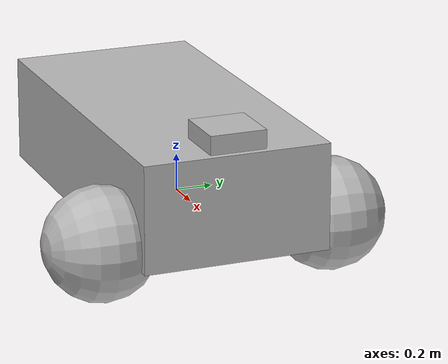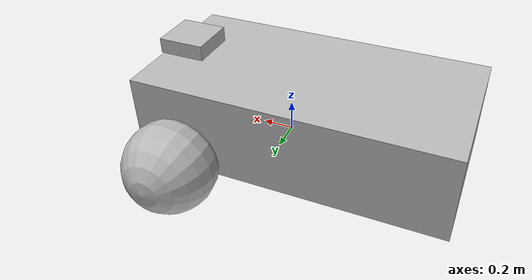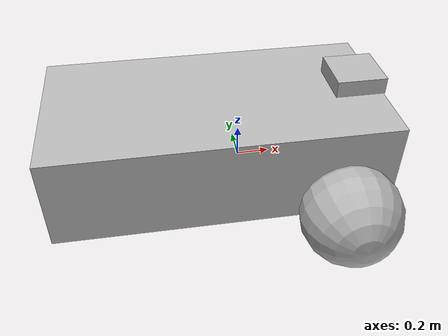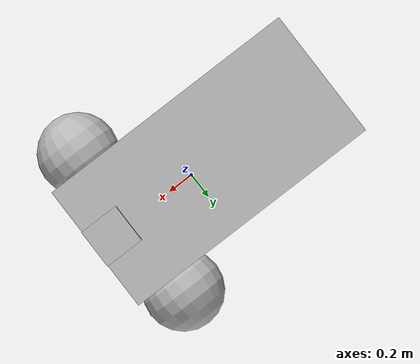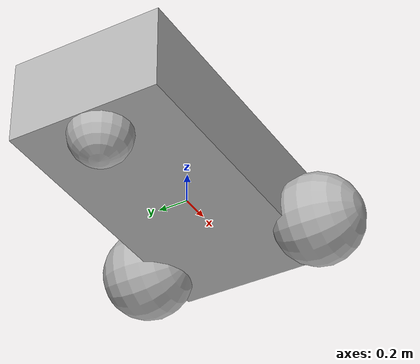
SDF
<?xml version='1.0'?>
<sdf version='1.7'>
  <model name='my_robot'>
    <link name='chassis'>
      <pose>-0.151427 0 0.175 0 -0 0</pose>
      <inertial>
        <mass>1.14395</mass>
        <inertia>
          <ixx>0.126164</ixx>
          <ixy>0</ixy>
          <ixz>0</ixz>
          <iyy>0.416519</iyy>
          <iyz>0</iyz>
          <izz>0.481014</izz>
        </inertia>
        <pose>0 0 0 0 -0 0</pose>
      </inertial>
      <self_collide>0</self_collide>
      <enable_wind>0</enable_wind>
      <kinematic>0</kinematic>
      <visual name='visual'>
        <geometry>
          <box>
            <size>2.01142 1 0.568726</size>
          </box>
        </geometry>
        <material>
          <shader type='pixel'/>
          <emissive>0 0 0 1</emissive>
        </material>
        <pose>0 0 0 0 -0 0</pose>
        <transparency>0</transparency>
        <cast_shadows>1</cast_shadows>
      </visual>
      <collision name='collision'>
        <laser_retro>0</laser_retro>
        <max_contacts>10</max_contacts>
        <pose>0 0 0 0 -0 0</pose>
        <geometry>
          <box>
            <size>2.01142 1 0.568726</size>
          </box>
        </geometry>
        <surface>
          <friction>
            <ode>
              <mu>1</mu>
              <mu2>1</mu2>
              <fdir1>0 0 0</fdir1>
              <slip1>0</slip1>
              <slip2>0</slip2>
            </ode>
            <torsional>
              <coefficient>1</coefficient>
              <patch_radius>0</patch_radius>
              <surface_radius>0</surface_radius>
              <use_patch_radius>1</use_patch_radius>
              <ode>
                <slip>0</slip>
              </ode>
            </torsional>
          </friction>
          <bounce>
            <restitution_coefficient>0</restitution_coefficient>
            <threshold>1e+06</threshold>
          </bounce>
          <contact>
            <collide_without_contact>0</collide_without_contact>
            <collide_without_contact_bitmask>1</collide_without_contact_bitmask>
            <collide_bitmask>1</collide_bitmask>
            <ode>
              <soft_cfm>0</soft_cfm>
              <soft_erp>0.2</soft_erp>
              <kp>1e+13</kp>
              <kd>1</kd>
              <max_vel>0.01</max_vel>
              <min_depth>0</min_depth>
            </ode>
            <bullet>
              <split_impulse>1</split_impulse>
              <split_impulse_penetration_threshold>-0.01</split_impulse_penetration_threshold>
              <soft_cfm>0</soft_cfm>
              <soft_erp>0.2</soft_erp>
              <kp>1e+13</kp>
              <kd>1</kd>
            </bullet>
          </contact>
        </surface>
      </collision>
    </link>
    <link name='caster'>
      <pose>-0.957138 -0 -0.125 0 -0 0</pose>
      <inertial>
        <mass>1</mass>
        <inertia>
          <ixx>0.1</ixx>
          <ixy>0</ixy>
          <ixz>0</ixz>
          <iyy>0.1</iyy>
          <iyz>0</iyz>
          <izz>0.1</izz>
        </inertia>
        <pose>0 0 0 0 -0 0</pose>
      </inertial>
      <self_collide>0</self_collide>
      <enable_wind>0</enable_wind>
      <kinematic>0</kinematic>
      <visual name='visual'>
        <geometry>
          <sphere>
            <radius>0.2</radius>
          </sphere>
        </geometry>
        <material>
          <shader type='pixel'/>
          <emissive>0 0 0 1</emissive>
        </material>
        <pose>0 0 0 0 -0 0</pose>
        <transparency>0</transparency>
        <cast_shadows>1</cast_shadows>
      </visual>
      <collision name='collision'>
        <laser_retro>0</laser_retro>
        <max_contacts>10</max_contacts>
        <pose>0 0 0 0 -0 0</pose>
        <geometry>
          <sphere>
            <radius>0.2</radius>
          </sphere>
        </geometry>
        <surface>
          <friction>
            <ode>
              <mu>1</mu>
              <mu2>1</mu2>
              <fdir1>0 0 0</fdir1>
              <slip1>0</slip1>
              <slip2>0</slip2>
            </ode>
            <torsional>
              <coefficient>1</coefficient>
              <patch_radius>0</patch_radius>
              <surface_radius>0</surface_radius>
              <use_patch_radius>1</use_patch_radius>
              <ode>
                <slip>0</slip>
              </ode>
            </torsional>
          </friction>
          <bounce>
            <restitution_coefficient>0</restitution_coefficient>
            <threshold>1e+06</threshold>
          </bounce>
          <contact>
            <collide_without_contact>0</collide_without_contact>
            <collide_without_contact_bitmask>1</collide_without_contact_bitmask>
            <collide_bitmask>1</collide_bitmask>
            <ode>
              <soft_cfm>0</soft_cfm>
              <soft_erp>0.2</soft_erp>
              <kp>1e+13</kp>
              <kd>1</kd>
              <max_vel>0.01</max_vel>
              <min_depth>0</min_depth>
            </ode>
            <bullet>
              <split_impulse>1</split_impulse>
              <split_impulse_penetration_threshold>-0.01</split_impulse_penetration_threshold>
              <soft_cfm>0</soft_cfm>
              <soft_erp>0.2</soft_erp>
              <kp>1e+13</kp>
              <kd>1</kd>
            </bullet>
          </contact>
        </surface>
      </collision>
    </link>
    <link name='left_wheel'>
      <pose>0.554283 0.625029 -0.025 -1.5707 -0 -0</pose>
      <inertial>
        <mass>2</mass>
        <inertia>
          <ixx>0.145833</ixx>
          <ixy>0</ixy>
          <ixz>0</ixz>
          <iyy>0.145833</iyy>
          <iyz>0</iyz>
          <izz>0.125</izz>
        </inertia>
        <pose>0 0 0 0 -0 0</pose>
      </inertial>
      <self_collide>0</self_collide>
      <enable_wind>0</enable_wind>
      <kinematic>0</kinematic>
      <visual name='visual'>
        <geometry>
          <sphere>
            <radius>0.3</radius>
          </sphere>
        </geometry>
        <material>
          <shader type='pixel'/>
          <emissive>0 0 0 1</emissive>
        </material>
        <pose>0 0 0 0 -0 0</pose>
        <transparency>0</transparency>
        <cast_shadows>1</cast_shadows>
      </visual>
      <collision name='collision'>
        <laser_retro>0</laser_retro>
        <max_contacts>10</max_contacts>
        <pose>0 0 0 0 -0 0</pose>
        <geometry>
          <sphere>
            <radius>0.3</radius>
          </sphere>
        </geometry>
        <surface>
          <friction>
            <ode>
              <mu>1</mu>
              <mu2>1</mu2>
              <fdir1>0 0 0</fdir1>
              <slip1>0</slip1>
              <slip2>0</slip2>
            </ode>
            <torsional>
              <coefficient>1</coefficient>
              <patch_radius>0</patch_radius>
              <surface_radius>0</surface_radius>
              <use_patch_radius>1</use_patch_radius>
              <ode>
                <slip>0</slip>
              </ode>
            </torsional>
          </friction>
          <bounce>
            <restitution_coefficient>0</restitution_coefficient>
            <threshold>1e+06</threshold>
          </bounce>
          <contact>
            <collide_without_contact>0</collide_without_contact>
            <collide_without_contact_bitmask>1</collide_without_contact_bitmask>
            <collide_bitmask>1</collide_bitmask>
            <ode>
              <soft_cfm>0</soft_cfm>
              <soft_erp>0.2</soft_erp>
              <kp>1e+13</kp>
              <kd>1</kd>
              <max_vel>0.01</max_vel>
              <min_depth>0.01</min_depth>
            </ode>
            <bullet>
              <split_impulse>1</split_impulse>
              <split_impulse_penetration_threshold>-0.01</split_impulse_penetration_threshold>
              <soft_cfm>0</soft_cfm>
              <soft_erp>0.2</soft_erp>
              <kp>1e+13</kp>
              <kd>1</kd>
            </bullet>
          </contact>
        </surface>
      </collision>
    </link>
    <link name='camera_link'>
      <inertial>
        <mass>0.009</mass>
        <inertia>
          <ixx>7.5e-05</ixx>
          <ixy>0</ixy>
          <ixz>0</ixz>
          <iyy>7.5e-05</iyy>
          <iyz>0</iyz>
          <izz>0.000135</izz>
        </inertia>
        <pose>0 0 0 0 -0 0</pose>
      </inertial>
      <pose>0.703463 -5e-06 0.522662 1e-06 -5e-06 0</pose>
      <gravity>1</gravity>
      <self_collide>0</self_collide>
      <kinematic>0</kinematic>
      <enable_wind>0</enable_wind>
      <visual name='visual'>
        <pose>0 0 0 0 -0 0</pose>
        <geometry>
          <box>
            <size>0.3 0.3 0.1</size>
          </box>
        </geometry>
        <material>
          <shader type='pixel'/>
          <emissive>0 0 0 1</emissive>
        </material>
        <transparency>0</transparency>
        <cast_shadows>1</cast_shadows>
      </visual>
      <collision name='collision'>
        <laser_retro>0</laser_retro>
        <max_contacts>10</max_contacts>
        <pose>0 0 0 0 -0 0</pose>
        <geometry>
          <box>
            <size>0.3 0.3 0.1</size>
          </box>
        </geometry>
        <surface>
          <friction>
            <ode>
              <mu>1</mu>
              <mu2>1</mu2>
              <fdir1>0 0 0</fdir1>
              <slip1>0</slip1>
              <slip2>0</slip2>
            </ode>
            <torsional>
              <coefficient>1</coefficient>
              <patch_radius>0</patch_radius>
              <surface_radius>0</surface_radius>
              <use_patch_radius>1</use_patch_radius>
              <ode>
                <slip>0</slip>
              </ode>
            </torsional>
          </friction>
          <bounce>
            <restitution_coefficient>0</restitution_coefficient>
            <threshold>1e+06</threshold>
          </bounce>
          <contact>
            <collide_without_contact>0</collide_without_contact>
            <collide_without_contact_bitmask>1</collide_without_contact_bitmask>
            <collide_bitmask>1</collide_bitmask>
            <ode>
              <soft_cfm>0</soft_cfm>
              <soft_erp>0.2</soft_erp>
              <kp>1e+13</kp>
              <kd>1</kd>
              <max_vel>0.01</max_vel>
              <min_depth>0</min_depth>
            </ode>
            <bullet>
              <split_impulse>1</split_impulse>
              <split_impulse_penetration_threshold>-0.01</split_impulse_penetration_threshold>
              <soft_cfm>0</soft_cfm>
              <soft_erp>0.2</soft_erp>
              <kp>1e+13</kp>
              <kd>1</kd>
            </bullet>
          </contact>
        </surface>
      </collision>
      <sensor type="camera" name="camera_sensor">
        <parent link="camera_link"/>
	<update_rate>30.0</update_rate>
	<visualize>true</visualize>
        <camera>
          <horizontal_fov>1.3962634</horizontal_fov>
          <image>
            <format>R8G8B8</format>
            <width>640</width>
            <height>480</height>
          </image>
          <clip>
            <near>1</near>
            <far>50</far>
          </clip>
        </camera>

        <plugin name="camera_controller" filename="libgazebo_ros_camera.so">
          <cameraName>front_camera</cameraName>
          <alwaysOn>true</alwaysOn>
          <updateRate>0.0</updateRate>
          <imageTopicName>image_raw</imageTopicName>
          <cameraInfoTopicName>camera_info</cameraInfoTopicName>
          <frameName>camera_link</frameName>
        </plugin>
      </sensor>
    </link>
    <link name='right_wheel'>
      <pose>0.554282 -0.625029 -0.025 -1.5707 -0 -0</pose>
      <inertial>
        <mass>2</mass>
        <inertia>
          <ixx>0.145833</ixx>
          <ixy>0</ixy>
          <ixz>0</ixz>
          <iyy>0.145833</iyy>
          <iyz>0</iyz>
          <izz>0.125</izz>
        </inertia>
        <pose>0 0 0 0 -0 0</pose>
      </inertial>
      <self_collide>0</self_collide>
      <enable_wind>0</enable_wind>
      <kinematic>0</kinematic>
      <visual name='visual'>
        <geometry>
          <sphere>
            <radius>0.3</radius>
          </sphere>
        </geometry>
        <material>
          <shader type='pixel'/>
        </material>
        <pose>0 0 0 0 -0 0</pose>
        <transparency>0</transparency>
        <cast_shadows>1</cast_shadows>
      </visual>
      <collision name='collision'>
        <laser_retro>0</laser_retro>
        <max_contacts>10</max_contacts>
        <pose>0 0 0 0 -0 0</pose>
        <geometry>
          <sphere>
            <radius>0.3</radius>
          </sphere>
        </geometry>
        <surface>
          <friction>
            <ode>
              <mu>1</mu>
              <mu2>1</mu2>
              <fdir1>0 0 0</fdir1>
              <slip1>0</slip1>
              <slip2>0</slip2>
            </ode>
            <torsional>
              <coefficient>1</coefficient>
              <patch_radius>0</patch_radius>
              <surface_radius>0</surface_radius>
              <use_patch_radius>1</use_patch_radius>
              <ode>
                <slip>0</slip>
              </ode>
            </torsional>
          </friction>
          <bounce>
            <restitution_coefficient>0</restitution_coefficient>
            <threshold>1e+06</threshold>
          </bounce>
          <contact>
            <collide_without_contact>0</collide_without_contact>
            <collide_without_contact_bitmask>1</collide_without_contact_bitmask>
            <collide_bitmask>1</collide_bitmask>
            <ode>
              <soft_cfm>0</soft_cfm>
              <soft_erp>0.2</soft_erp>
              <kp>1e+13</kp>
              <kd>1</kd>
              <max_vel>0.01</max_vel>
              <min_depth>0.01</min_depth>
            </ode>
            <bullet>
              <split_impulse>1</split_impulse>
              <split_impulse_penetration_threshold>-0.01</split_impulse_penetration_threshold>
              <soft_cfm>0</soft_cfm>
              <soft_erp>0.2</soft_erp>
              <kp>1e+13</kp>
              <kd>1</kd>
            </bullet>
          </contact>
        </surface>
      </collision>
    </link>
    <joint name='caster_wheel' type='ball'>
      <parent>chassis</parent>
      <child>caster</child>
      <pose>0 0 0 0 -0 0</pose>
      <physics>
        <ode>
          <limit>
            <cfm>0</cfm>
            <erp>0.2</erp>
          </limit>
          <suspension>
            <cfm>0</cfm>
            <erp>0.2</erp>
          </suspension>
        </ode>
      </physics>
    </joint>
    <joint name='chassis_JOINT_0' type='fixed'>
      <parent>chassis</parent>
      <child>camera_link</child>
      <pose>0 0 0 0 -0 0</pose>
      <physics>
        <ode>
          <limit>
            <cfm>0</cfm>
            <erp>0.2</erp>
          </limit>
          <suspension>
            <cfm>0</cfm>
            <erp>0.2</erp>
          </suspension>
        </ode>
      </physics>
    </joint>
    <joint name='left_wheel_joint' type='revolute'>
      <parent>chassis</parent>
      <child>left_wheel</child>
      <pose>0 0 0 0 -0 0</pose>
      <axis>
        <xyz>0 0 1</xyz>
        <limit>
          <lower>-1.79769e+308</lower>
          <upper>1.79769e+308</upper>
          <effort>-1</effort>
          <velocity>-1</velocity>
        </limit>
        <dynamics>
          <spring_reference>0</spring_reference>
          <spring_stiffness>0</spring_stiffness>
          <damping>0</damping>
          <friction>0</friction>
        </dynamics>
      </axis>
      <physics>
        <ode>
          <limit>
            <cfm>0</cfm>
            <erp>0.2</erp>
          </limit>
          <suspension>
            <cfm>0</cfm>
            <erp>0.2</erp>
          </suspension>
        </ode>
      </physics>
    </joint>
    <joint name='right_wheel_joint' type='revolute'>
      <parent>chassis</parent>
      <child>right_wheel</child>
      <pose>0 0 0 0 -0 0</pose>
      <axis>
        <xyz>0 0 1</xyz>
        <limit>
          <lower>-1.79769e+308</lower>
          <upper>1.79769e+308</upper>
          <effort>-1</effort>
          <velocity>-1</velocity>
        </limit>
        <dynamics>
          <spring_reference>0</spring_reference>
          <spring_stiffness>0</spring_stiffness>
          <damping>0</damping>
          <friction>0</friction>
        </dynamics>
      </axis>
      <physics>
        <ode>
          <limit>
            <cfm>0</cfm>
            <erp>0.2</erp>
          </limit>
          <suspension>
            <cfm>0</cfm>
            <erp>0.2</erp>
          </suspension>
        </ode>
      </physics>
    </joint>
    <static>0</static>
    <allow_auto_disable>1</allow_auto_disable>
    <plugin name='diff_drive' filename='libgazebo_ros_diff_drive.so'>
      <commandTopic>cmd_vel</commandTopic>
      <publishWheelTF>0</publishWheelTF>
      <publishWheelJointState>0</publishWheelJointState>
      <updateRate>30</updateRate>
      <leftJoint>left_wheel_joint</leftJoint>
      <rightJoint>right_wheel_joint</rightJoint>
      <wheelSeparation>1.25</wheelSeparation>
      <wheelDiameter>0.6</wheelDiameter>
      <wheelTorque>20</wheelTorque>
      <wheelAcceleration>1.0</wheelAcceleration>
      <odometrySource>world</odometrySource>
      <publishOdomTF>1</publishOdomTF>
      <odometryFrame>odom</odometryFrame>
      <odometryTopic>odom</odometryTopic>
      <robotBaseFrame>base</robotBaseFrame>
    </plugin>
  </model>
</sdf>
